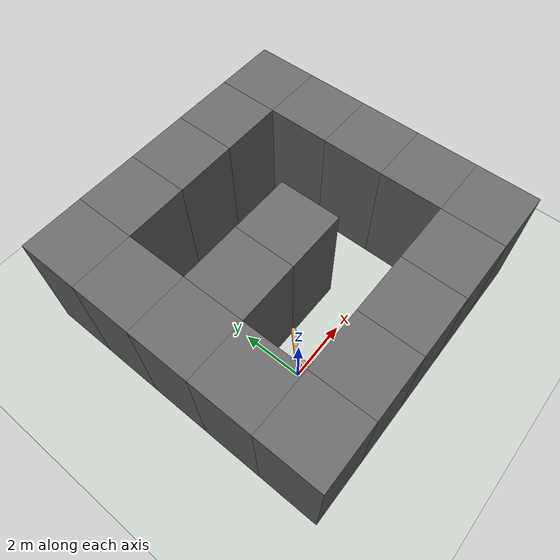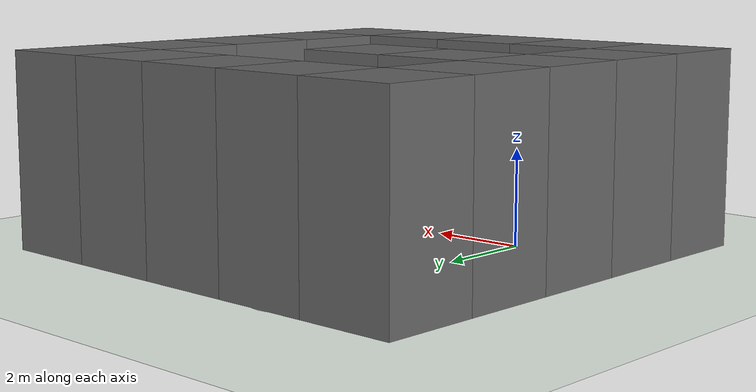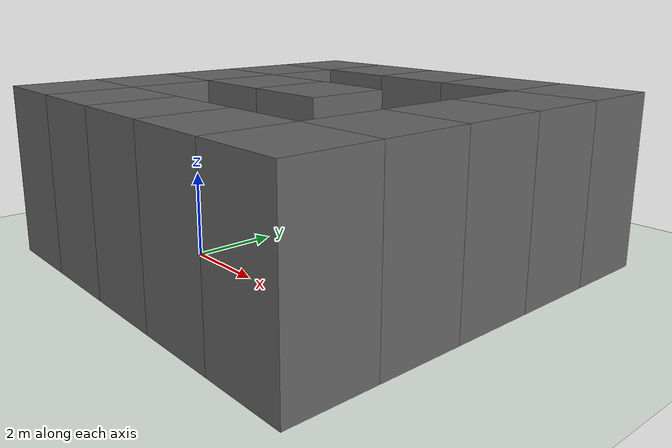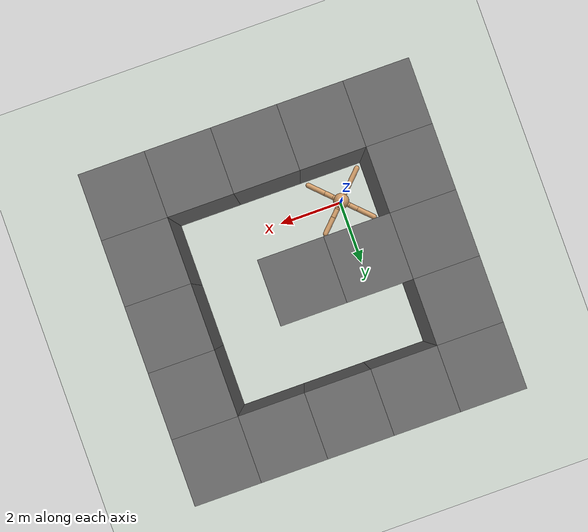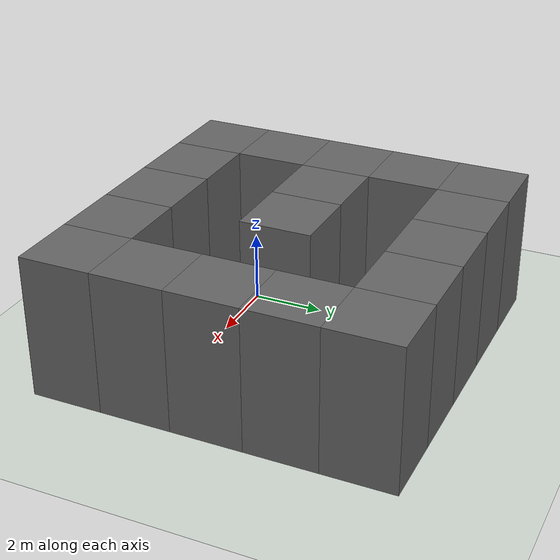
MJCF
<mujoco model="ant">
  <compiler inertiafromgeom="true" angle="degree" coordinate="local" />
  <option timestep="0.02" integrator="RK4" />
  <custom>
    <numeric name="init_qpos" data="0.0 0.0 0.55 1.0 0.0 0.0 0.0 0.0 1.0 0.0 -1.0 0.0 -1.0 0.0 1.0" />
  </custom>
  <default>
    <joint limited="true" armature="1" damping="1" />
    <geom condim="3" conaffinity="0" margin="0.01" friction="1 0.5 0.5" solref=".02 1" solimp=".8 .8 .01" rgba="0.8 0.6 0.4 1" density="5.0" />
  </default>
  <asset>
    <texture type="skybox" builtin="gradient" width="100" height="100" rgb1="1 1 1" rgb2="0 0 0" />
    <texture name="texgeom" type="cube" builtin="flat" mark="cross" width="127" height="1278" rgb1="0.8 0.6 0.4" rgb2="0.8 0.6 0.4" markrgb="1 1 1" random="0.01" />
    <texture name="texplane" type="2d" builtin="checker" rgb1="0 0 0" rgb2="0.8 0.8 0.8" width="100" height="100" />
    <material name='MatPlane' texture="texplane" shininess="1" texrepeat="60 60" specular="1"  reflectance="0.5" />
    <material name='geom' texture="texgeom" texuniform="true" />
  </asset>
  <worldbody>
    <light directional="true" cutoff="100" exponent="1" diffuse="1 1 1" specular=".1 .1 .1" pos="0 0 1.3" dir="-0 0 -1.3" />
    <geom name='floor' material="MatPlane" pos='0 0 0' size='40 40 40' type='plane' conaffinity='1' rgba='0.8 0.9 0.8 1' condim='3' />
    <body name="torso" pos="0 0 0.75">
      <geom name="torso_geom" type="sphere" size="0.25" pos="0 0 0" />
      <joint name="root" type="free" limited="false" pos="0 0 0" axis="0 0 1" margin="0.01" armature="0" damping="0" />
      <body name="front_left_leg" pos="0 0 0">
        <geom name="aux_1_geom" type="capsule" size="0.08" fromto="0.0 0.0 0.0 0.2 0.2 0.0" />
        <body name="aux_1" pos="0.2 0.2 0">
          <joint name="hip_1" type="hinge" pos="0.0 0.0 0.0" axis="0 0 1" range="-30 30" />
          <geom name="left_leg_geom" type="capsule" size="0.08" fromto="0.0 0.0 0.0 0.2 0.2 0.0" />
          <body pos="0.2 0.2 0">
            <joint name="ankle_1" type="hinge" pos="0.0 0.0 0.0" axis="-1 1 0" range="30 70" />
            <geom name="left_ankle_geom" type="capsule" size="0.08" fromto="0.0 0.0 0.0 0.4 0.4 0.0" />
          </body>
        </body>
      </body>
      <body name="front_right_leg" pos="0 0 0">
        <geom name="aux_2_geom" type="capsule" size="0.08" fromto="0.0 0.0 0.0 -0.2 0.2 0.0" />
        <body name="aux_2" pos="-0.2 0.2 0">
          <joint name="hip_2" type="hinge" pos="0.0 0.0 0.0" axis="0 0 1" range="-30 30" />
          <geom name="right_leg_geom" type="capsule" size="0.08" fromto="0.0 0.0 0.0 -0.2 0.2 0.0" />
          <body pos="-0.2 0.2 0">
            <joint name="ankle_2" type="hinge" pos="0.0 0.0 0.0" axis="1 1 0" range="-70 -30" />
            <geom name="right_ankle_geom" type="capsule" size="0.08" fromto="0.0 0.0 0.0 -0.4 0.4 0.0" />
          </body>
        </body>
      </body>
      <body name="back_leg" pos="0 0 0">
        <geom name="aux_3_geom" type="capsule" size="0.08" fromto="0.0 0.0 0.0 -0.2 -0.2 0.0" />
        <body name="aux_3" pos="-0.2 -0.2 0">
          <joint name="hip_3" type="hinge" pos="0.0 0.0 0.0" axis="0 0 1" range="-30 30" />
          <geom name="back_leg_geom" type="capsule" size="0.08" fromto="0.0 0.0 0.0 -0.2 -0.2 0.0" />
          <body pos="-0.2 -0.2 0">
            <joint name="ankle_3" type="hinge" pos="0.0 0.0 0.0" axis="-1 1 0" range="-70 -30" />
            <geom name="third_ankle_geom" type="capsule" size="0.08" fromto="0.0 0.0 0.0 -0.4 -0.4 0.0" />
          </body>
        </body>
      </body>
      <body name="right_back_leg" pos="0 0 0">
        <geom name="aux_4_geom" type="capsule" size="0.08" fromto="0.0 0.0 0.0 0.2 -0.2 0.0" />
        <body name="aux_4" pos="0.2 -0.2 0">
          <joint name="hip_4" type="hinge" pos="0.0 0.0 0.0" axis="0 0 1" range="-30 30" />
          <geom name="rightback_leg_geom" type="capsule" size="0.08" fromto="0.0 0.0 0.0 0.2 -0.2 0.0" />
          <body pos="0.2 -0.2 0">
            <joint name="ankle_4" type="hinge" pos="0.0 0.0 0.0" axis="1 1 0" range="30 70" />
            <geom name="fourth_ankle_geom" type="capsule" size="0.08" fromto="0.0 0.0 0.0 0.4 -0.4 0.0" />
          </body>
        </body>
      </body>
    </body>
    <geom conaffinity="1" contype="1" material="" name="block_0_0" pos="-2.000000 -2.000000 2.000000" rgba="0.4 0.4 0.4 1" size="1.000000 1.000000 2.000000" type="box"/>
    <geom conaffinity="1" contype="1" material="" name="block_0_1" pos="0.000000 -2.000000 2.000000" rgba="0.4 0.4 0.4 1" size="1.000000 1.000000 2.000000" type="box"/>
    <geom conaffinity="1" contype="1" material="" name="block_0_2" pos="2.000000 -2.000000 2.000000" rgba="0.4 0.4 0.4 1" size="1.000000 1.000000 2.000000" type="box"/>
    <geom conaffinity="1" contype="1" material="" name="block_0_3" pos="4.000000 -2.000000 2.000000" rgba="0.4 0.4 0.4 1" size="1.000000 1.000000 2.000000" type="box"/>
    <geom conaffinity="1" contype="1" material="" name="block_0_4" pos="6.000000 -2.000000 2.000000" rgba="0.4 0.4 0.4 1" size="1.000000 1.000000 2.000000" type="box"/>
    <geom conaffinity="1" contype="1" material="" name="block_1_0" pos="-2.000000 0.000000 2.000000" rgba="0.4 0.4 0.4 1" size="1.000000 1.000000 2.000000" type="box"/>
    <geom conaffinity="1" contype="1" material="" name="block_1_4" pos="6.000000 0.000000 2.000000" rgba="0.4 0.4 0.4 1" size="1.000000 1.000000 2.000000" type="box"/>
    <geom conaffinity="1" contype="1" material="" name="block_2_0" pos="-2.000000 2.000000 2.000000" rgba="0.4 0.4 0.4 1" size="1.000000 1.000000 2.000000" type="box"/>
    <geom conaffinity="1" contype="1" material="" name="block_2_1" pos="0.000000 2.000000 2.000000" rgba="0.4 0.4 0.4 1" size="1.000000 1.000000 2.000000" type="box"/>
    <geom conaffinity="1" contype="1" material="" name="block_2_2" pos="2.000000 2.000000 2.000000" rgba="0.4 0.4 0.4 1" size="1.000000 1.000000 2.000000" type="box"/>
    <geom conaffinity="1" contype="1" material="" name="block_2_4" pos="6.000000 2.000000 2.000000" rgba="0.4 0.4 0.4 1" size="1.000000 1.000000 2.000000" type="box"/>
    <geom conaffinity="1" contype="1" material="" name="block_3_0" pos="-2.000000 4.000000 2.000000" rgba="0.4 0.4 0.4 1" size="1.000000 1.000000 2.000000" type="box"/>
    <geom conaffinity="1" contype="1" material="" name="block_3_4" pos="6.000000 4.000000 2.000000" rgba="0.4 0.4 0.4 1" size="1.000000 1.000000 2.000000" type="box"/>
    <geom conaffinity="1" contype="1" material="" name="block_4_0" pos="-2.000000 6.000000 2.000000" rgba="0.4 0.4 0.4 1" size="1.000000 1.000000 2.000000" type="box"/>
    <geom conaffinity="1" contype="1" material="" name="block_4_1" pos="0.000000 6.000000 2.000000" rgba="0.4 0.4 0.4 1" size="1.000000 1.000000 2.000000" type="box"/>
    <geom conaffinity="1" contype="1" material="" name="block_4_2" pos="2.000000 6.000000 2.000000" rgba="0.4 0.4 0.4 1" size="1.000000 1.000000 2.000000" type="box"/>
    <geom conaffinity="1" contype="1" material="" name="block_4_3" pos="4.000000 6.000000 2.000000" rgba="0.4 0.4 0.4 1" size="1.000000 1.000000 2.000000" type="box"/>
    <geom conaffinity="1" contype="1" material="" name="block_4_4" pos="6.000000 6.000000 2.000000" rgba="0.4 0.4 0.4 1" size="1.000000 1.000000 2.000000" type="box"/>
    <geom name="target" pos="0 6 0" rgba="0 1 0 0.2" type="sphere" size="1"/>

  </worldbody>
  <actuator>
    <motor joint="hip_4" ctrlrange="-150.0 150.0" ctrllimited="true" />
    <motor joint="ankle_4" ctrlrange="-150.0 150.0" ctrllimited="true" />
    <motor joint="hip_1" ctrlrange="-150.0 150.0" ctrllimited="true" />
    <motor joint="ankle_1" ctrlrange="-150.0 150.0" ctrllimited="true" />
    <motor joint="hip_2" ctrlrange="-150.0 150.0" ctrllimited="true" />
    <motor joint="ankle_2" ctrlrange="-150.0 150.0" ctrllimited="true" />
    <motor joint="hip_3" ctrlrange="-150.0 150.0" ctrllimited="true" />
    <motor joint="ankle_3" ctrlrange="-150.0 150.0" ctrllimited="true" />
  </actuator>
</mujoco>
